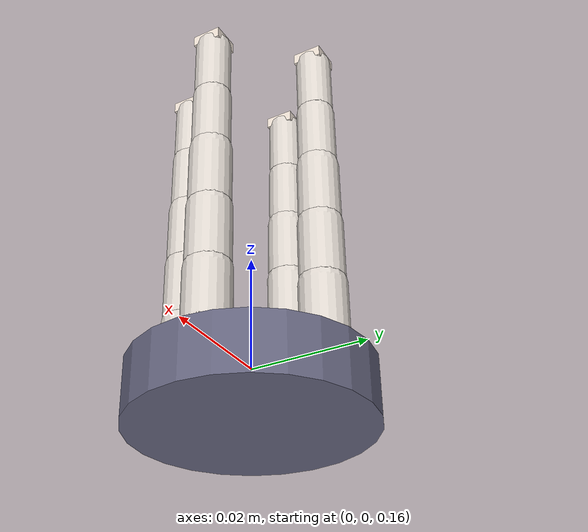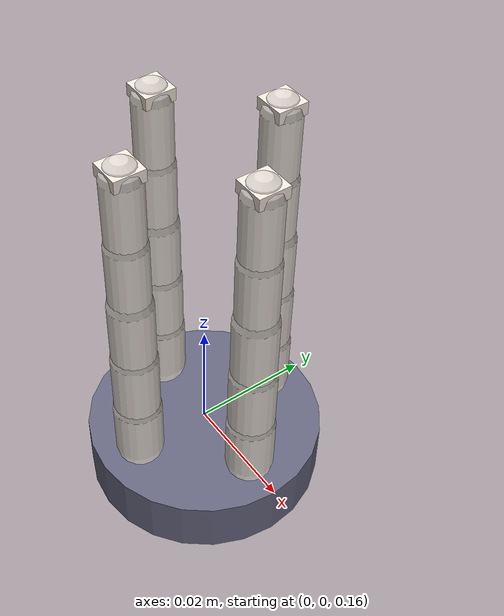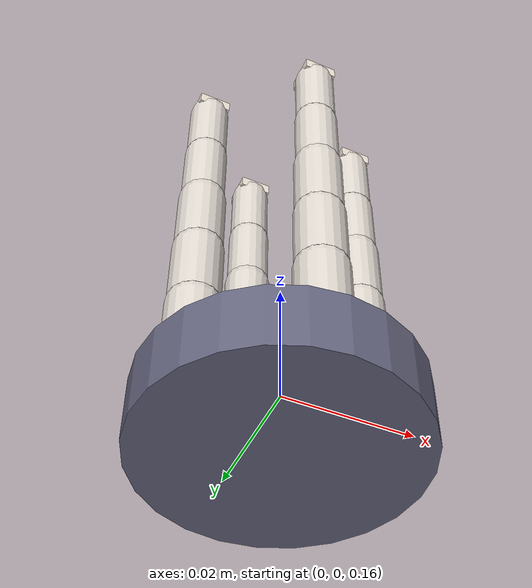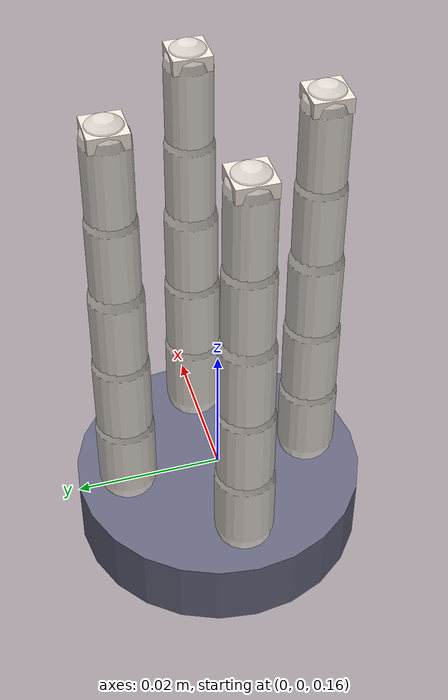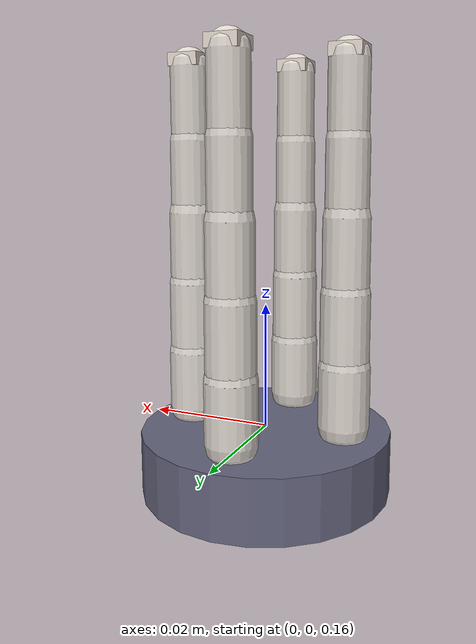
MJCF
<?xml version="1.0" encoding="utf-8"?>
<mujoco model="GD-20260128-0049">

    <compiler angle="radian" autolimits="true" meshdir="meshes"/>

    <option timestep="0.002" iterations="50" solver="Newton" tolerance="1e-10">
        <flag warmstart="enable"/>
    </option>

    <size nconmax="500" njmax="500" nstack="5000000"/>

    <visual>
        <headlight diffuse="0.6 0.6 0.6" ambient="0.3 0.3 0.3" specular="0.1 0.1 0.1"/>
        <rgba haze="0.15 0.25 0.35 1"/>
        <global azimuth="120" elevation="-20"/>
    </visual>

    <default>
        <default class="gripper">
            <geom type="capsule" condim="4" friction="0.8 0.005 0.0001"
                  rgba="0.88 0.85 0.82 1" margin="0.001"/>
            <joint type="hinge" limited="true" range="-1.57 1.57"
                   stiffness="0.04" damping="0.12"
                   armature="0.001"/>
        </default>
        <default class="friction_pad">
            <geom type="box" condim="4" friction="0.96 0.005 0.0001"
                  rgba="0.95 0.9 0.85 1" margin="0.0005"/>
        </default>
        <default class="palm">
            <geom type="cylinder" rgba="0.4 0.4 0.5 1" friction="0.8 0.005 0.0001"/>
        </default>
        <default class="test_object">
            <geom condim="4" friction="0.6 0.005 0.0001" rgba="1 0.3 0.3 1"/>
        </default>
    </default>

    <asset>
        <texture type="skybox" builtin="gradient" rgb1="0.3 0.5 0.7" rgb2="0 0 0" width="512" height="3072"/>
        <texture type="2d" name="groundplane" builtin="checker" mark="edge" rgb1="0.2 0.3 0.4" rgb2="0.1 0.2 0.3"
                 markrgb="0.8 0.8 0.8" width="300" height="300"/>
        <material name="groundplane" texture="groundplane" texuniform="true" texrepeat="5 5" reflectance="0.2"/>
        <material name="finger_mat" rgba="0.88 0.85 0.82 1" specular="0.3" shininess="0.5"/>
        <material name="palm_mat" rgba="0.4 0.4 0.5 1" specular="0.5" shininess="0.8"/>
        <material name="pad_mat" rgba="0.95 0.9 0.85 1" specular="0.2" shininess="0.3"/>
    </asset>

    <worldbody>

        <geom name="ground" type="plane" size="0.5 0.5 0.1" material="groundplane" condim="3"/>
        <light pos="0 0 1.5" dir="0 0 -1" directional="true"/>
        <light pos="0.5 0.5 1" dir="-0.5 -0.5 -1" diffuse="0.3 0.3 0.3"/>

        <body name="palm" pos="0 0 0.15">
            <geom class="palm" name="palm_geom" size="0.0200 0.0050"
                  pos="0 0 0.0050" material="palm_mat"/>

            <body name="finger_0_base" pos="0.0130 0.0000 0.0100">
                <joint class="gripper" name="finger_0_base_joint" axis="0 1 0"
                       stiffness="0.0400"
                       damping="0.1200"/>
                <site name="finger_0_site_0" pos="0 0 0.002" size="0.002"/>
                <geom class="gripper" name="finger_0_seg_0"
                      fromto="0 0 0.0020 0 0 0.0114"
                      size="0.0040" material="finger_mat"/>

                <body name="finger_0_seg_1" pos="0 0 0.0114">
                    <joint class="gripper" name="finger_0_joint_1" axis="0 1 0"
                           stiffness="0.0340" damping="0.0960"/>
                    <geom class="gripper" name="finger_0_seg_1_geom"
                          fromto="0 0 0.001 0 0 0.0114"
                          size="0.0038" material="finger_mat"/>
                    <site name="finger_0_site_1" pos="0 0 0.0057" size="0.002"/>

                <body name="finger_0_seg_2" pos="0 0 0.0114">
                    <joint class="gripper" name="finger_0_joint_2" axis="0 1 0"
                           stiffness="0.0280" damping="0.0720"/>
                    <geom class="gripper" name="finger_0_seg_2_geom"
                          fromto="0 0 0.001 0 0 0.0114"
                          size="0.0036" material="finger_mat"/>
                    <site name="finger_0_site_2" pos="0 0 0.0057" size="0.002"/>

                <body name="finger_0_seg_3" pos="0 0 0.0114">
                    <joint class="gripper" name="finger_0_joint_3" axis="0 1 0"
                           stiffness="0.0220" damping="0.0480"/>
                    <geom class="gripper" name="finger_0_seg_3_geom"
                          fromto="0 0 0.001 0 0 0.0114"
                          size="0.0033" material="finger_mat"/>
                    <site name="finger_0_site_3" pos="0 0 0.0057" size="0.002"/>

                <body name="finger_0_seg_4" pos="0 0 0.0114">
                    <joint class="gripper" name="finger_0_joint_4" axis="0 1 0"
                           stiffness="0.0160" damping="0.0240"/>
                    <geom class="gripper" name="finger_0_seg_4_geom"
                          fromto="0 0 0.001 0 0 0.0114"
                          size="0.0031" material="finger_mat"/>
                    <site name="finger_0_site_4" pos="0 0 0.0057" size="0.002"/>
                    <geom class="friction_pad" name="finger_0_pad"
                          pos="0 0 0.0124" size="0.0025 0.0025 0.001"
                          material="pad_mat"/>
                    <site name="finger_0_tip" pos="0 0 0.0114" size="0.002" rgba="1 0 0 1"/>
                </body>
                </body>
                </body>
                </body>
            </body>

            <body name="finger_1_base" pos="0.0000 0.0130 0.0100">
                <joint class="gripper" name="finger_1_base_joint" axis="0 1 0"
                       stiffness="0.0400"
                       damping="0.1200"/>
                <site name="finger_1_site_0" pos="0 0 0.002" size="0.002"/>
                <geom class="gripper" name="finger_1_seg_0"
                      fromto="0 0 0.0020 0 0 0.0114"
                      size="0.0040" material="finger_mat"/>

                <body name="finger_1_seg_1" pos="0 0 0.0114">
                    <joint class="gripper" name="finger_1_joint_1" axis="0 1 0"
                           stiffness="0.0340" damping="0.0960"/>
                    <geom class="gripper" name="finger_1_seg_1_geom"
                          fromto="0 0 0.001 0 0 0.0114"
                          size="0.0038" material="finger_mat"/>
                    <site name="finger_1_site_1" pos="0 0 0.0057" size="0.002"/>

                <body name="finger_1_seg_2" pos="0 0 0.0114">
                    <joint class="gripper" name="finger_1_joint_2" axis="0 1 0"
                           stiffness="0.0280" damping="0.0720"/>
                    <geom class="gripper" name="finger_1_seg_2_geom"
                          fromto="0 0 0.001 0 0 0.0114"
                          size="0.0036" material="finger_mat"/>
                    <site name="finger_1_site_2" pos="0 0 0.0057" size="0.002"/>

                <body name="finger_1_seg_3" pos="0 0 0.0114">
                    <joint class="gripper" name="finger_1_joint_3" axis="0 1 0"
                           stiffness="0.0220" damping="0.0480"/>
                    <geom class="gripper" name="finger_1_seg_3_geom"
                          fromto="0 0 0.001 0 0 0.0114"
                          size="0.0033" material="finger_mat"/>
                    <site name="finger_1_site_3" pos="0 0 0.0057" size="0.002"/>

                <body name="finger_1_seg_4" pos="0 0 0.0114">
                    <joint class="gripper" name="finger_1_joint_4" axis="0 1 0"
                           stiffness="0.0160" damping="0.0240"/>
                    <geom class="gripper" name="finger_1_seg_4_geom"
                          fromto="0 0 0.001 0 0 0.0114"
                          size="0.0031" material="finger_mat"/>
                    <site name="finger_1_site_4" pos="0 0 0.0057" size="0.002"/>
                    <geom class="friction_pad" name="finger_1_pad"
                          pos="0 0 0.0124" size="0.0025 0.0025 0.001"
                          material="pad_mat"/>
                    <site name="finger_1_tip" pos="0 0 0.0114" size="0.002" rgba="1 0 0 1"/>
                </body>
                </body>
                </body>
                </body>
            </body>

            <body name="finger_2_base" pos="-0.0130 0.0000 0.0100">
                <joint class="gripper" name="finger_2_base_joint" axis="0 1 0"
                       stiffness="0.0400"
                       damping="0.1200"/>
                <site name="finger_2_site_0" pos="0 0 0.002" size="0.002"/>
                <geom class="gripper" name="finger_2_seg_0"
                      fromto="0 0 0.0020 0 0 0.0114"
                      size="0.0040" material="finger_mat"/>

                <body name="finger_2_seg_1" pos="0 0 0.0114">
                    <joint class="gripper" name="finger_2_joint_1" axis="0 1 0"
                           stiffness="0.0340" damping="0.0960"/>
                    <geom class="gripper" name="finger_2_seg_1_geom"
                          fromto="0 0 0.001 0 0 0.0114"
                          size="0.0038" material="finger_mat"/>
                    <site name="finger_2_site_1" pos="0 0 0.0057" size="0.002"/>

                <body name="finger_2_seg_2" pos="0 0 0.0114">
                    <joint class="gripper" name="finger_2_joint_2" axis="0 1 0"
                           stiffness="0.0280" damping="0.0720"/>
                    <geom class="gripper" name="finger_2_seg_2_geom"
                          fromto="0 0 0.001 0 0 0.0114"
                          size="0.0036" material="finger_mat"/>
                    <site name="finger_2_site_2" pos="0 0 0.0057" size="0.002"/>

                <body name="finger_2_seg_3" pos="0 0 0.0114">
                    <joint class="gripper" name="finger_2_joint_3" axis="0 1 0"
                           stiffness="0.0220" damping="0.0480"/>
                    <geom class="gripper" name="finger_2_seg_3_geom"
                          fromto="0 0 0.001 0 0 0.0114"
                          size="0.0033" material="finger_mat"/>
                    <site name="finger_2_site_3" pos="0 0 0.0057" size="0.002"/>

                <body name="finger_2_seg_4" pos="0 0 0.0114">
                    <joint class="gripper" name="finger_2_joint_4" axis="0 1 0"
                           stiffness="0.0160" damping="0.0240"/>
                    <geom class="gripper" name="finger_2_seg_4_geom"
                          fromto="0 0 0.001 0 0 0.0114"
                          size="0.0031" material="finger_mat"/>
                    <site name="finger_2_site_4" pos="0 0 0.0057" size="0.002"/>
                    <geom class="friction_pad" name="finger_2_pad"
                          pos="0 0 0.0124" size="0.0025 0.0025 0.001"
                          material="pad_mat"/>
                    <site name="finger_2_tip" pos="0 0 0.0114" size="0.002" rgba="1 0 0 1"/>
                </body>
                </body>
                </body>
                </body>
            </body>

            <body name="finger_3_base" pos="-0.0000 -0.0130 0.0100">
                <joint class="gripper" name="finger_3_base_joint" axis="0 1 0"
                       stiffness="0.0400"
                       damping="0.1200"/>
                <site name="finger_3_site_0" pos="0 0 0.002" size="0.002"/>
                <geom class="gripper" name="finger_3_seg_0"
                      fromto="0 0 0.0020 0 0 0.0114"
                      size="0.0040" material="finger_mat"/>

                <body name="finger_3_seg_1" pos="0 0 0.0114">
                    <joint class="gripper" name="finger_3_joint_1" axis="0 1 0"
                           stiffness="0.0340" damping="0.0960"/>
                    <geom class="gripper" name="finger_3_seg_1_geom"
                          fromto="0 0 0.001 0 0 0.0114"
                          size="0.0038" material="finger_mat"/>
                    <site name="finger_3_site_1" pos="0 0 0.0057" size="0.002"/>

                <body name="finger_3_seg_2" pos="0 0 0.0114">
                    <joint class="gripper" name="finger_3_joint_2" axis="0 1 0"
                           stiffness="0.0280" damping="0.0720"/>
                    <geom class="gripper" name="finger_3_seg_2_geom"
                          fromto="0 0 0.001 0 0 0.0114"
                          size="0.0036" material="finger_mat"/>
                    <site name="finger_3_site_2" pos="0 0 0.0057" size="0.002"/>

                <body name="finger_3_seg_3" pos="0 0 0.0114">
                    <joint class="gripper" name="finger_3_joint_3" axis="0 1 0"
                           stiffness="0.0220" damping="0.0480"/>
                    <geom class="gripper" name="finger_3_seg_3_geom"
                          fromto="0 0 0.001 0 0 0.0114"
                          size="0.0033" material="finger_mat"/>
                    <site name="finger_3_site_3" pos="0 0 0.0057" size="0.002"/>

                <body name="finger_3_seg_4" pos="0 0 0.0114">
                    <joint class="gripper" name="finger_3_joint_4" axis="0 1 0"
                           stiffness="0.0160" damping="0.0240"/>
                    <geom class="gripper" name="finger_3_seg_4_geom"
                          fromto="0 0 0.001 0 0 0.0114"
                          size="0.0031" material="finger_mat"/>
                    <site name="finger_3_site_4" pos="0 0 0.0057" size="0.002"/>
                    <geom class="friction_pad" name="finger_3_pad"
                          pos="0 0 0.0124" size="0.0025 0.0025 0.001"
                          material="pad_mat"/>
                    <site name="finger_3_tip" pos="0 0 0.0114" size="0.002" rgba="1 0 0 1"/>
                </body>
                </body>
                </body>
                </body>
            </body>
        </body>
    </worldbody>

    <actuator>
        <position name="finger_0_base_act" joint="finger_0_base_joint"
                  kp="14" ctrllimited="true" ctrlrange="-1.5 1.5"/>
        <position name="finger_0_joint_1_act" joint="finger_0_joint_1"
                  kp="11.5" ctrllimited="true" ctrlrange="-1.5 1.5"/>
        <position name="finger_0_joint_2_act" joint="finger_0_joint_2"
                  kp="9.4" ctrllimited="true" ctrlrange="-1.5 1.5"/>
        <position name="finger_0_joint_3_act" joint="finger_0_joint_3"
                  kp="7.4" ctrllimited="true" ctrlrange="-1.5 1.5"/>
        <position name="finger_0_joint_4_act" joint="finger_0_joint_4"
                  kp="5.4" ctrllimited="true" ctrlrange="-1.5 1.5"/>
        <position name="finger_1_base_act" joint="finger_1_base_joint"
                  kp="14" ctrllimited="true" ctrlrange="-1.5 1.5"/>
        <position name="finger_1_joint_1_act" joint="finger_1_joint_1"
                  kp="11.5" ctrllimited="true" ctrlrange="-1.5 1.5"/>
        <position name="finger_1_joint_2_act" joint="finger_1_joint_2"
                  kp="9.4" ctrllimited="true" ctrlrange="-1.5 1.5"/>
        <position name="finger_1_joint_3_act" joint="finger_1_joint_3"
                  kp="7.4" ctrllimited="true" ctrlrange="-1.5 1.5"/>
        <position name="finger_1_joint_4_act" joint="finger_1_joint_4"
                  kp="5.4" ctrllimited="true" ctrlrange="-1.5 1.5"/>
        <position name="finger_2_base_act" joint="finger_2_base_joint"
                  kp="14" ctrllimited="true" ctrlrange="-1.5 1.5"/>
        <position name="finger_2_joint_1_act" joint="finger_2_joint_1"
                  kp="11.5" ctrllimited="true" ctrlrange="-1.5 1.5"/>
        <position name="finger_2_joint_2_act" joint="finger_2_joint_2"
                  kp="9.4" ctrllimited="true" ctrlrange="-1.5 1.5"/>
        <position name="finger_2_joint_3_act" joint="finger_2_joint_3"
                  kp="7.4" ctrllimited="true" ctrlrange="-1.5 1.5"/>
        <position name="finger_2_joint_4_act" joint="finger_2_joint_4"
                  kp="5.4" ctrllimited="true" ctrlrange="-1.5 1.5"/>
        <position name="finger_3_base_act" joint="finger_3_base_joint"
                  kp="14" ctrllimited="true" ctrlrange="-1.5 1.5"/>
        <position name="finger_3_joint_1_act" joint="finger_3_joint_1"
                  kp="11.5" ctrllimited="true" ctrlrange="-1.5 1.5"/>
        <position name="finger_3_joint_2_act" joint="finger_3_joint_2"
                  kp="9.4" ctrllimited="true" ctrlrange="-1.5 1.5"/>
        <position name="finger_3_joint_3_act" joint="finger_3_joint_3"
                  kp="7.4" ctrllimited="true" ctrlrange="-1.5 1.5"/>
        <position name="finger_3_joint_4_act" joint="finger_3_joint_4"
                  kp="5.4" ctrllimited="true" ctrlrange="-1.5 1.5"/>
    </actuator>

    <sensor>
        <jointpos name="finger_0_pos" joint="finger_0_base_joint"/>
        <jointvel name="finger_0_vel" joint="finger_0_base_joint"/>
        <jointpos name="finger_1_pos" joint="finger_1_base_joint"/>
        <jointvel name="finger_1_vel" joint="finger_1_base_joint"/>
        <jointpos name="finger_2_pos" joint="finger_2_base_joint"/>
        <jointvel name="finger_2_vel" joint="finger_2_base_joint"/>
        <jointpos name="finger_3_pos" joint="finger_3_base_joint"/>
        <jointvel name="finger_3_vel" joint="finger_3_base_joint"/>
    </sensor>

</mujoco>
